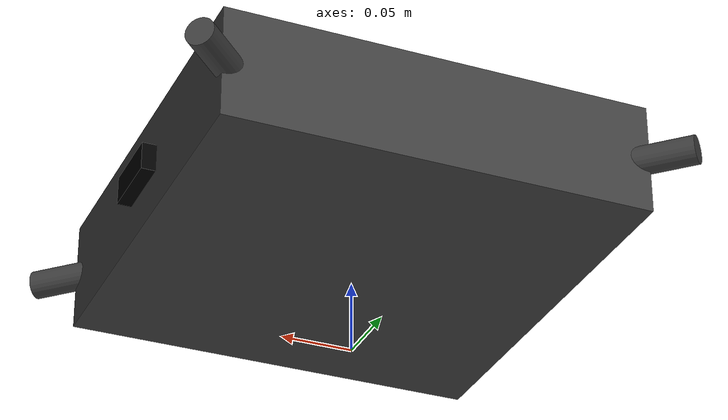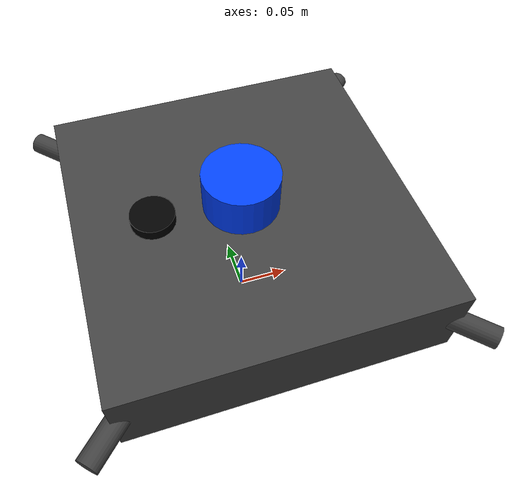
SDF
<sdf version='1.11'>
  <model name='uav_drone'>
    <link name='base_footprint'>
      <inertial>
        <pose>0.0024590163934426219 0 0.1032786885245902 0 0 0</pose>
        <mass>1.8300000000000001</mass>
        <inertia>
          <ixx>0.01568032786885246</ixx>
          <ixy>0</ixy>
          <ixz>1.4754098360655741e-05</ixz>
          <iyy>0.016344262295081961</iyy>
          <iyz>0</iyz>
          <izz>0.02888393442622951</izz>
        </inertia>
      </inertial>
      <collision name='base_footprint_fixed_joint_lump__base_link_collision'>
        <pose>0 0 0.10000000000000001 0 0 0</pose>
        <geometry>
          <box>
            <size>0.29999999999999999 0.29999999999999999 0.080000000000000002</size>
          </box>
        </geometry>
      </collision>
      <collision name='base_footprint_fixed_joint_lump__camera_link_collision_1'>
        <pose>0.14999999999999999 0 0.10000000000000001 0 0 0</pose>
        <geometry>
          <box>
            <size>0.02 0.050000000000000003 0.02</size>
          </box>
        </geometry>
        <surface>
          <contact>
            <ode/>
          </contact>
          <friction>
            <ode/>
          </friction>
        </surface>
      </collision>
      <collision name='base_footprint_fixed_joint_lump__lidar_link_collision_2'>
        <pose>0 0 0.16 0 0 0</pose>
        <geometry>
          <cylinder>
            <length>0.040000000000000001</length>
            <radius>0.035000000000000003</radius>
          </cylinder>
        </geometry>
        <surface>
          <contact>
            <ode/>
          </contact>
          <friction>
            <ode/>
          </friction>
        </surface>
      </collision>
      <visual name='base_footprint_fixed_joint_lump__base_link_visual'>
        <pose>0 0 0.10000000000000001 0 0 0</pose>
        <geometry>
          <box>
            <size>0.29999999999999999 0.29999999999999999 0.080000000000000002</size>
          </box>
        </geometry>
        <material>
          <diffuse>0.25 0.25 0.25 1</diffuse>
          <ambient>0.25 0.25 0.25 1</ambient>
        </material>
      </visual>
      <visual name='base_footprint_fixed_joint_lump__arm_back_left_visual_1'>
        <pose>-0.12 0.12 0.10000000000000001 0.78539999999999999 1.5707963267948966 0</pose>
        <geometry>
          <cylinder>
            <length>0.14999999999999999</length>
            <radius>0.01</radius>
          </cylinder>
        </geometry>
        <material>
          <diffuse>0.25 0.25 0.25 1</diffuse>
          <ambient>0.25 0.25 0.25 1</ambient>
        </material>
      </visual>
      <visual name='base_footprint_fixed_joint_lump__arm_back_right_visual_2'>
        <pose>-0.12 -0.12 0.10000000000000001 -0.78539999999999999 1.5707963267948966 0</pose>
        <geometry>
          <cylinder>
            <length>0.14999999999999999</length>
            <radius>0.01</radius>
          </cylinder>
        </geometry>
        <material>
          <diffuse>0.25 0.25 0.25 1</diffuse>
          <ambient>0.25 0.25 0.25 1</ambient>
        </material>
      </visual>
      <visual name='base_footprint_fixed_joint_lump__arm_front_left_visual_3'>
        <pose>0.12 0.12 0.10000000000000001 -0.78539999999999999 1.5707963267948966 0</pose>
        <geometry>
          <cylinder>
            <length>0.14999999999999999</length>
            <radius>0.01</radius>
          </cylinder>
        </geometry>
        <material>
          <diffuse>0.25 0.25 0.25 1</diffuse>
          <ambient>0.25 0.25 0.25 1</ambient>
        </material>
      </visual>
      <visual name='base_footprint_fixed_joint_lump__arm_front_right_visual_4'>
        <pose>0.12 -0.12 0.10000000000000001 0.78539999999999999 1.5707963267948966 0</pose>
        <geometry>
          <cylinder>
            <length>0.14999999999999999</length>
            <radius>0.01</radius>
          </cylinder>
        </geometry>
        <material>
          <diffuse>0.25 0.25 0.25 1</diffuse>
          <ambient>0.25 0.25 0.25 1</ambient>
        </material>
      </visual>
      <visual name='base_footprint_fixed_joint_lump__camera_link_visual_5'>
        <pose>0.14999999999999999 0 0.10000000000000001 0 0 0</pose>
        <geometry>
          <box>
            <size>0.02 0.050000000000000003 0.02</size>
          </box>
        </geometry>
        <material>
          <diffuse>0 0 0 1</diffuse>
          <ambient>0 0 0 1</ambient>
        </material>
      </visual>
      <visual name='base_footprint_fixed_joint_lump__gps_link_visual_6'>
        <pose>-0.080000000000000002 0 0.14999999999999999 0 0 0</pose>
        <geometry>
          <cylinder>
            <length>0.01</length>
            <radius>0.02</radius>
          </cylinder>
        </geometry>
        <material>
          <diffuse>0 0 0 1</diffuse>
          <ambient>0 0 0 1</ambient>
        </material>
      </visual>
      <visual name='base_footprint_fixed_joint_lump__lidar_link_visual_7'>
        <pose>0 0 0.16 0 0 0</pose>
        <geometry>
          <cylinder>
            <length>0.040000000000000001</length>
            <radius>0.035000000000000003</radius>
          </cylinder>
        </geometry>
        <material>
          <diffuse>0 0.25 1 1</diffuse>
          <ambient>0 0.25 1 1</ambient>
        </material>
      </visual>
      <sensor name='front_camera' type='camera'>
        <always_on>true</always_on>
        <update_rate>30</update_rate>
        <visualize>true</visualize>
        <topic>/drone/front_camera/image_raw</topic>
        <camera>
          <horizontal_fov>1.3962600000000001</horizontal_fov>
          <image>
            <width>640</width>
            <height>480</height>
            <format>R8G8B8</format>
          </image>
          <clip>
            <near>0.050000000000000003</near>
            <far>100</far>
          </clip>
          <noise>
            <type>gaussian</type>
            <mean>0</mean>
            <stddev>0.0070000000000000001</stddev>
          </noise>
        </camera>
        <pose>0.14999999999999999 0 0.10000000000000001 0 0 0</pose>
        <gz_frame_id>camera_link_optical</gz_frame_id>
      </sensor>
      <sensor name='navsat_sensor' type='navsat'>
        <always_on>true</always_on>
        <update_rate>10</update_rate>
        <topic>/drone/gps/navsat</topic>
        <pose>-0.080000000000000002 0 0.14999999999999999 0 0 0</pose>
        <gz_frame_id>gps_link</gz_frame_id>
        <gps/>
      </sensor>
      <sensor name='imu_sensor' type='imu'>
        <always_on>true</always_on>
        <update_rate>200</update_rate>
        <topic>/drone/imu/data</topic>
        <imu>
          <angular_velocity>
            <x>
              <noise type='gaussian'>
                <stddev>0.00020000000000000001</stddev>
              </noise>
            </x>
            <y>
              <noise type='gaussian'>
                <stddev>0.00020000000000000001</stddev>
              </noise>
            </y>
            <z>
              <noise type='gaussian'>
                <stddev>0.00020000000000000001</stddev>
              </noise>
            </z>
          </angular_velocity>
          <linear_acceleration>
            <x>
              <noise type='gaussian'>
                <stddev>0.01</stddev>
              </noise>
            </x>
            <y>
              <noise type='gaussian'>
                <stddev>0.01</stddev>
              </noise>
            </y>
            <z>
              <noise type='gaussian'>
                <stddev>0.01</stddev>
              </noise>
            </z>
          </linear_acceleration>
        </imu>
        <pose>0 0 0.10000000000000001 0 0 0</pose>
        <gz_frame_id>imu_link</gz_frame_id>
      </sensor>
      <sensor name='3d_lidar' type='gpu_lidar'>
        <always_on>true</always_on>
        <update_rate>10</update_rate>
        <visualize>true</visualize>
        <topic>/drone/lidar/points</topic>
        <ray>
          <scan>
            <horizontal>
              <samples>360</samples>
              <resolution>1</resolution>
              <min_angle>-3.1415899999999999</min_angle>
              <max_angle>3.1415899999999999</max_angle>
            </horizontal>
            <vertical>
              <samples>16</samples>
              <resolution>1</resolution>
              <min_angle>-0.261799</min_angle>
              <max_angle>0.261799</max_angle>
            </vertical>
          </scan>
          <range>
            <min>0.20000000000000001</min>
            <max>30</max>
            <resolution>0.01</resolution>
          </range>
          <noise>
            <type>gaussian</type>
            <mean>0</mean>
            <stddev>0.0080000000000000002</stddev>
          </noise>
        </ray>
        <pose>0 0 0.16 0 0 0</pose>
        <gz_frame_id>lidar_link</gz_frame_id>
      </sensor>
    </link>
    <frame name='arm_back_left_joint' attached_to='base_link'>
      <pose>-0.12 0.12 0 3.1415926535746803 1.5707926536662187 2.3561926535787308</pose>
    </frame>
    <frame name='arm_back_left' attached_to='arm_back_left_joint'>
      <pose>0 0 0 0 0 0</pose>
    </frame>
    <frame name='arm_back_right_joint' attached_to='base_link'>
      <pose>-0.12 -0.12 0 -3.1415926535746803 1.5707926537266703 -2.3561926535876618</pose>
    </frame>
    <frame name='arm_back_right' attached_to='arm_back_right_joint'>
      <pose>0 0 0 0 0 0</pose>
    </frame>
    <frame name='arm_front_left_joint' attached_to='base_link'>
      <pose>0.12 0.12 0 -3.1415926535746803 1.5707926537266703 -2.3561926535876618</pose>
    </frame>
    <frame name='arm_front_left' attached_to='arm_front_left_joint'>
      <pose>0 0 0 0 0 0</pose>
    </frame>
    <frame name='arm_front_right_joint' attached_to='base_link'>
      <pose>0.12 -0.12 0 3.1415926535746803 1.5707926536662187 2.3561926535787308</pose>
    </frame>
    <frame name='arm_front_right' attached_to='arm_front_right_joint'>
      <pose>0 0 0 0 0 0</pose>
    </frame>
    <frame name='camera_optical_joint' attached_to='camera_link'>
      <pose>0 0 0 -1.5708 -5.5511151231257827e-17 -1.5708</pose>
    </frame>
    <frame name='camera_link_optical' attached_to='camera_optical_joint'>
      <pose>0 0 0 0 0 0</pose>
    </frame>
    <frame name='camera_joint' attached_to='base_link'>
      <pose>0.14999999999999999 0 0 0 0 0</pose>
    </frame>
    <frame name='camera_link' attached_to='camera_joint'>
      <pose>0 0 0 0 0 0</pose>
    </frame>
    <frame name='gps_joint' attached_to='base_link'>
      <pose>-0.080000000000000002 0 0.050000000000000003 0 0 0</pose>
    </frame>
    <frame name='gps_link' attached_to='gps_joint'>
      <pose>0 0 0 0 0 0</pose>
    </frame>
    <frame name='imu_joint' attached_to='base_link'>
      <pose>0 0 0 0 0 0</pose>
    </frame>
    <frame name='imu_link' attached_to='imu_joint'>
      <pose>0 0 0 0 0 0</pose>
    </frame>
    <frame name='lidar_joint' attached_to='base_link'>
      <pose>0 0 0.059999999999999998 0 0 0</pose>
    </frame>
    <frame name='lidar_link' attached_to='lidar_joint'>
      <pose>0 0 0 0 0 0</pose>
    </frame>
    <frame name='base_footprint_joint' attached_to='base_footprint'>
      <pose>0 0 0.10000000000000001 0 0 0</pose>
    </frame>
    <frame name='base_link' attached_to='base_footprint_joint'>
      <pose>0 0 0 0 0 0</pose>
    </frame>
  </model>
</sdf>
